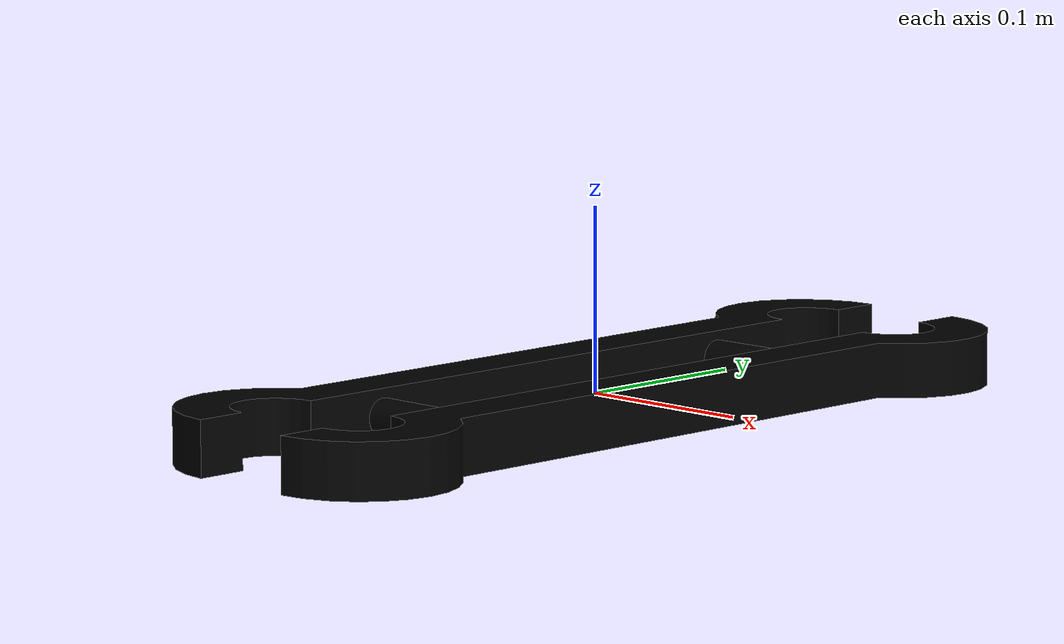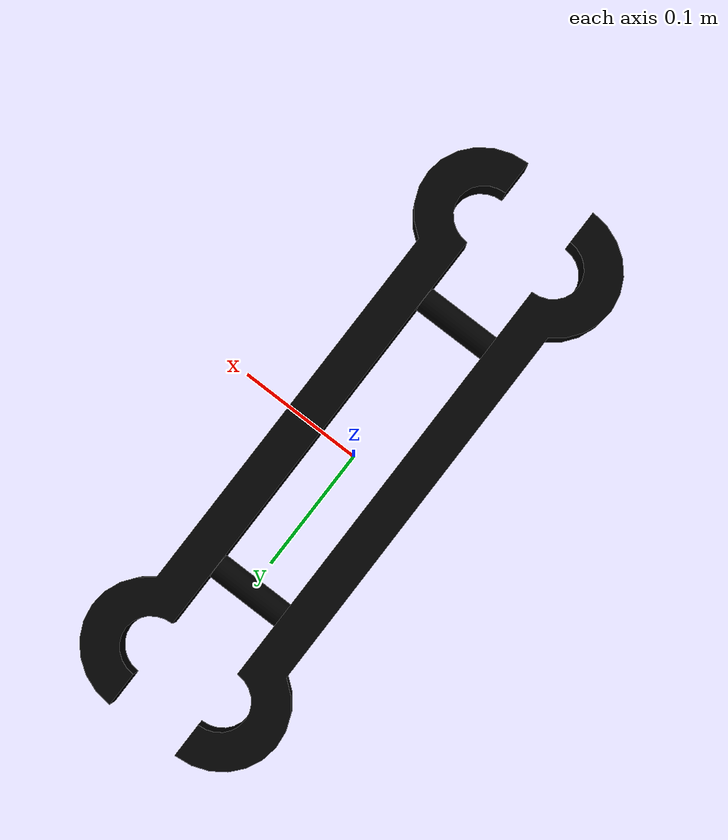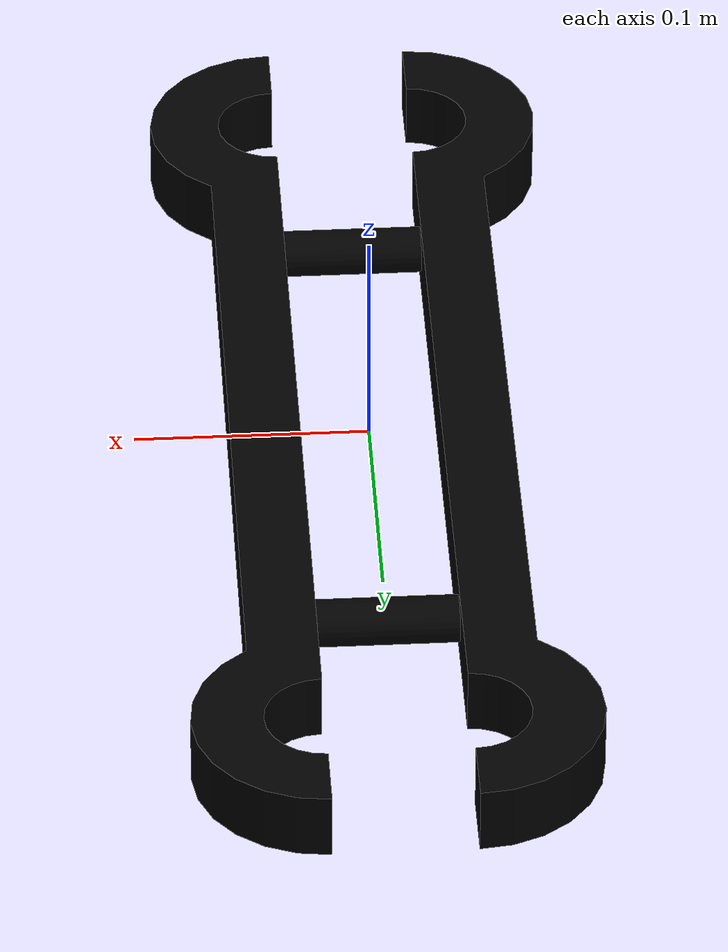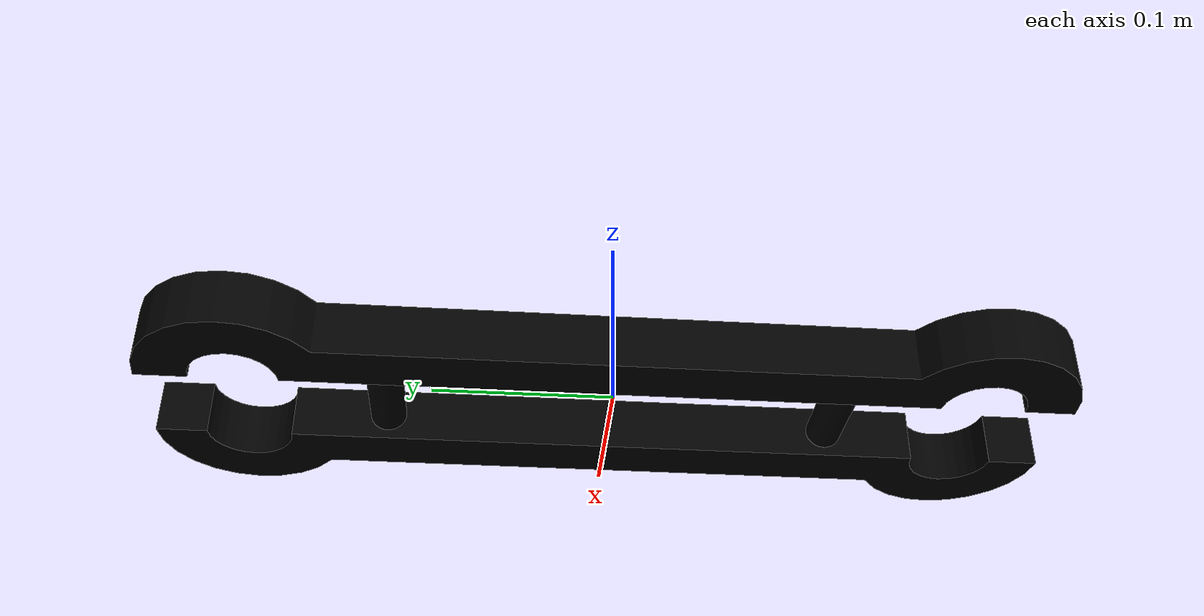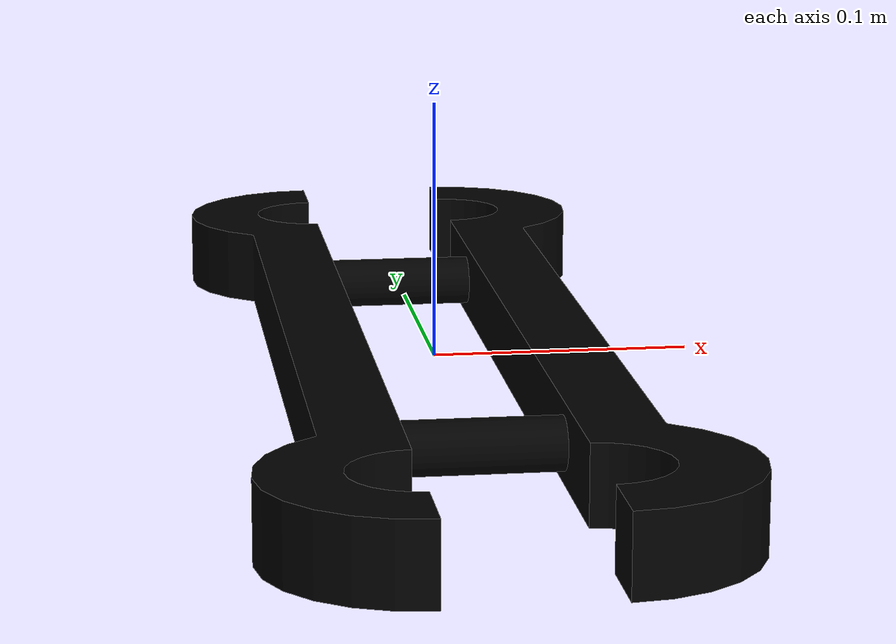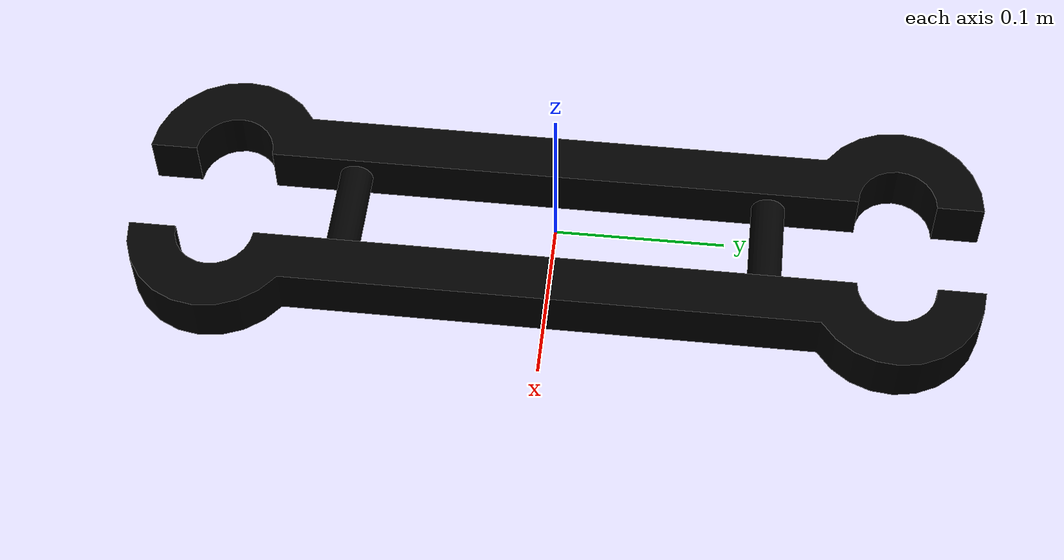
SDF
<?xml version='1.0'?>
<sdf version='1.6'>
  <model name='Grapa_stl'>
    <link name='superior'>
      <pose>-0.03 -0.25 -0.015 0 0 1.5707</pose>
      <inertial>
        <mass>1</mass>
        <inertia>
          <ixx>0.166667</ixx>
          <ixy>0</ixy>
          <ixz>0</ixz>
          <iyy>0.166667</iyy>
          <iyz>0</iyz>
          <izz>0.166667</izz>
        </inertia>
        <pose>0.25 0.015 0.015 0 0 0</pose>
      </inertial>
      <visual name='visual'>
        <geometry>
          <mesh>
            <uri>model://Grapa/meshes/Separador.stl</uri>
            <scale>0.93 1 1</scale>
          </mesh>
        </geometry>
        <material>
  <ambient>0 0 0 1</ambient>
  <emissive>0 0 0 1</emissive>
  <diffuse>0 0 0 1</diffuse>
  <specular>0 0 0 1</specular>
</material>

      </visual>
      <collision name='collision'>
        <geometry>
          <mesh>
            <uri>model://Grapa/meshes/Separador.stl</uri>
            <scale>0.93 1 1</scale>
          </mesh>
        </geometry>
      </collision>
    </link>

    <link name='inferior'>
      <pose>0.03 -0.25 0.015 3.1416 0 1.5707</pose>
      <inertial>
        <mass>1</mass>
        <inertia>
          <ixx>0.166667</ixx>
          <ixy>0</ixy>
          <ixz>0</ixz>
          <iyy>0.166667</iyy>
          <iyz>0</iyz>
          <izz>0.166667</izz>
        </inertia>
        <pose>0.25 0.015 0.015 0 0 0</pose>
      </inertial>
      <visual name='visual'>
        <geometry>
          <mesh>
            <uri>model://Grapa/meshes/Separador.stl</uri>
            <scale>0.93 1 1</scale>
          </mesh>
        </geometry>
        <material>
  <ambient>0 0 0 1</ambient>
  <emissive>0 0 0 1</emissive>
  <diffuse>0 0 0 1</diffuse>
  <specular>0 0 0 1</specular>
</material>

      </visual>
      <collision name='collision'>
        <geometry>
          <mesh>
            <uri>model://Grapa/meshes/Separador.stl</uri>
            <scale>0.93 1 1</scale>
          </mesh>
        </geometry>
      </collision>
    </link>

    <link name='cilindro_1'>
      <pose>0 -0.125 0 0 1.5707 0</pose>
      <visual name='visual'>
        <geometry>
          <cylinder>
            <radius>0.01</radius>
            <length>0.06</length>
          </cylinder>
        </geometry>
        <material>
  <ambient>0 0 0 1</ambient>
  <emissive>0 0 0 1</emissive>
  <diffuse>0 0 0 1</diffuse>
  <specular>0 0 0 1</specular>
</material>

      </visual>
    </link>

    <link name='cilindro_2'>
      <pose>0 0.125 0 0 1.5707 0</pose>
      <visual name='visual'>
        <geometry>
          <cylinder>
            <radius>0.01</radius>
            <length>0.06</length>
          </cylinder>
        </geometry>
        <material>
  <ambient>0 0 0 1</ambient>
  <emissive>0 0 0 1</emissive>
  <diffuse>0 0 0 1</diffuse>
  <specular>0 0 0 1</specular>
</material>

      </visual>
    </link>

  <joint name='joint_cil_1' type='fixed'>
    <parent>inferior</parent>
    <child>cilindro_1</child>
  </joint>
  <joint name='joint_cil_2' type='fixed'>
    <parent>inferior</parent>
    <child>cilindro_2</child>
  </joint>

  <joint name='joint_cil_1B' type='fixed'>
    <parent>superior</parent>
    <child>cilindro_1</child>
  </joint>
  <joint name='joint_cil_2B' type='fixed'>
    <parent>superior</parent>
    <child>cilindro_2</child>
  </joint>

  </model>
</sdf>
